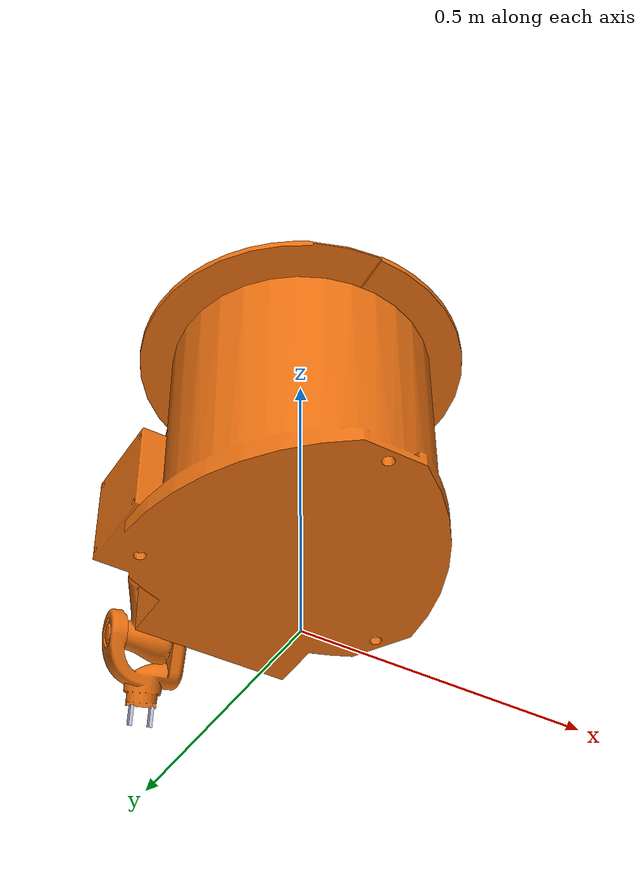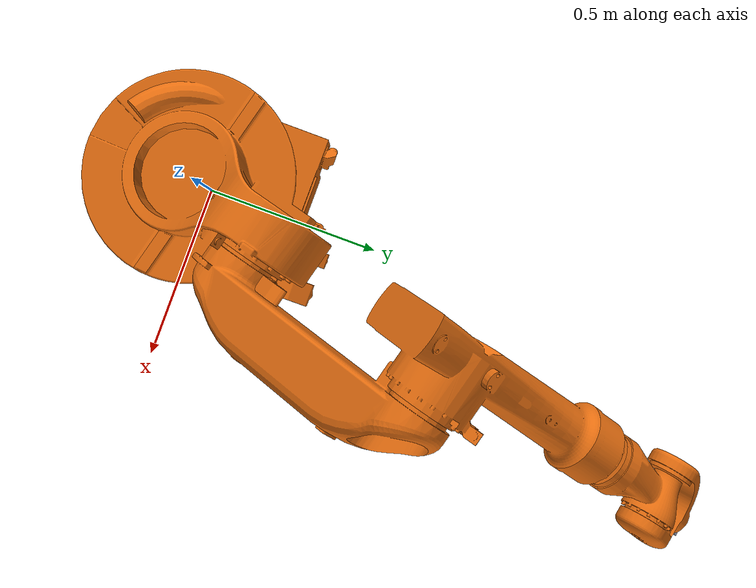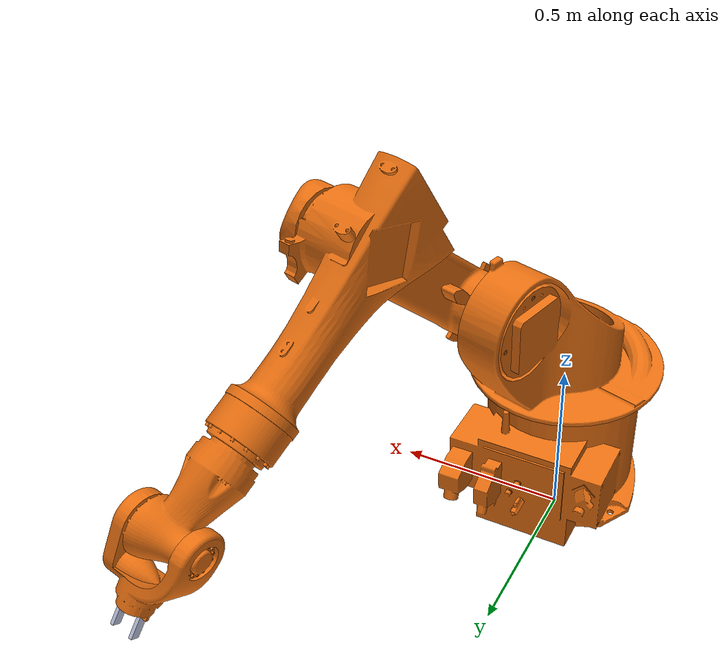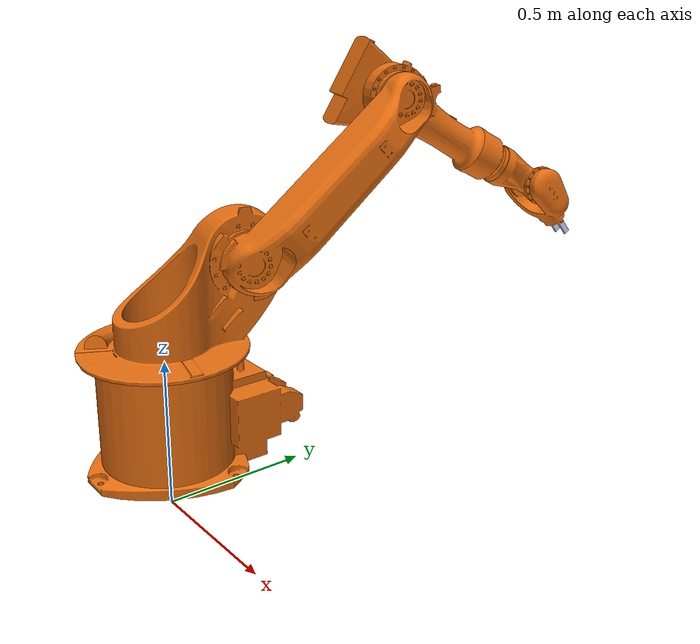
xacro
<?xml version="1.0"?>
<!-- Name your robot here -->
<robot name ="kuka_prism" xmlns:xacro="http://wiki.ros.org/xacro">

<!-- Include your urdf files here -->
	<!-- Include Robot's urdf filepath -->
	<xacro:include filename="$(find kuka_prism)/urdf/kuka_prism.urdf"/>

	<xacro:property name="camera_link" value="0.001" />

	<!-- Camera -->
	<link name="camera_link">
		<collision>
		<origin xyz="0 0 0" rpy="0 0 0"/>
		<geometry>
		<box size="${camera_link} ${camera_link} ${camera_link}"/>
		</geometry>
		</collision>

		<visual>
		<origin xyz="0 0 0" rpy="0 0 0"/>
		<geometry>
		<box size="${camera_link} ${camera_link} ${camera_link}"/>
		</geometry>
		<material name="red"/>
		</visual>

		<inertial>
		<mass value="1e-5" />
		<origin xyz="0 0 0" rpy="0 0 0"/>
		<inertia ixx="1e-6" ixy="0" ixz="0" iyy="1e-6" iyz="0" izz="1e-6" />
		</inertial>
	</link>

<!-- Add your gazebo sensors here -->
	<!-- camera -->
	<gazebo reference="camera_link">
		<sensor type="camera" name="camera1">
			<update_rate>30.0</update_rate>
				<camera name="head">
					<horizontal_fov>1.3962634</horizontal_fov>
					<image>
					<width>800</width>
					<height>800</height>
					<format>R8G8B8</format>
					</image>
					<clip>
					<near>0.02</near>
					<far>300</far>
					</clip>
					<noise>
					<type>gaussian</type>
					<!-- Noise is sampled independently per pixel on each frame.
						That pixel's noise value is added to each of its color
						channels, which at that point lie in the range [0,1]. -->
					<mean>0.0</mean>
					<stddev>0.007</stddev>
					</noise>
				</camera>
				<plugin name="camera_controller" filename="libgazebo_ros_camera.so">
					<alwaysOn>true</alwaysOn>
					<updateRate>0.0</updateRate>
					<cameraName>kuka/camera1</cameraName>
					<imageTopicName>image_raw</imageTopicName>
					<cameraInfoTopicName>camera_info</cameraInfoTopicName>
					<frameName>camera_link</frameName>
					<hackBaseline>0.07</hackBaseline>
					<distortionK1>0.0</distortionK1>
					<distortionK2>0.0</distortionK2>
					<distortionK3>0.0</distortionK3>
					<distortionT1>0.0</distortionT1>
					<distortionT2>0.0</distortionT2>
				</plugin>
			</sensor>
	</gazebo>

<!-- Create a joint between your robot and sensor 1.5708-->
	 <joint
	    name="base-cam joint"
	    type="fixed">
	    <origin
	      xyz="-0.14 0.09 0.04"
	      rpy="0 0 2.7489" />
	    <parent
	      link="P2_Wrist_Link" />
	    <child
	      link="camera_link" />
	 </joint>

	 <gazebo>
		<plugin name="gazebo_grasp_fix" filename="libgazebo_grasp_fix.so">
			 <arm>
				<arm_name>arm_group</arm_name>
				<palm_link> P2_Wrist_Link  </palm_link>
				<gripper_link> Grip1_Link </gripper_link>
				<gripper_link> Grip2_Link </gripper_link>
			 </arm>
			<forces_angle_tolerance>100</forces_angle_tolerance>
			<update_rate>4</update_rate>
			<grip_count_threshold>4</grip_count_threshold>
			<max_grip_count>8</max_grip_count>
			<release_tolerance>0.005</release_tolerance>
			<disable_collisions_on_attach>false</disable_collisions_on_attach>
			<contact_topic>__default_topic__</contact_topic>
		 </plugin>
	 </gazebo>

</robot>

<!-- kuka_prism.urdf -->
<robot name="kuka_prism">

  <link name="world"/>
  <joint name="base_joint" type="fixed">
    <parent link="world"/>
    <child link="base_link"/>
    <origin rpy="0 0 0" xyz="0.0 0.0 0.17"/>
  </joint>

  <link  name="base_link">
    <inertial>
      <origin
        xyz="0.00203770125996271 0.0516787420465166 0.154231674692837"
        rpy="0 0 0" />
      <mass
        value="59.5344572235136" />
      <inertia
        ixx="1.99175054954146"
        ixy="-0.0345376637497177"
        ixz="-0.000618142924361162"
        iyy="1.58719305664109"
        iyz="0.0476710164615629"
        izz="2.15114302906829" />
    </inertial>
    <visual>
      <origin
        xyz="0 0 0"
        rpy="0 0 0" />
      <geometry>
        <mesh
          filename="package://kuka_prism/meshes/base_link.STL" />
      </geometry>
      <material
        name="">
        <color
          rgba="0.917647058823529 0.43921568627451 0.0666666666666667 1" />
      </material>
    </visual>
    <collision>
      <origin
        xyz="0 0 0"
        rpy="0 0 0" />
      <geometry>
        <mesh
          filename="package://kuka_prism/meshes/base_link.STL" />
      </geometry>
    </collision>
  </link>
  <gazebo reference="base_link">
    <material>Gazebo/Black</material>
    <turnGravityOff>false</turnGravityOff>
  </gazebo>

  <link  name="Base_Rotary_Link">
    <inertial>
      <origin
        xyz="0.0208827429069736 0.089343928569874 0.0896769735882005"
        rpy="0 0 0" />
      <mass
        value="24.6935705009375" />
      <inertia
        ixx="1.06759496553512"
        ixy="-0.0886910252753023"
        ixz="-0.087627703242765"
        iyy="0.756138605709795"
        iyz="-0.354551325198558"
        izz="0.636809741979015" />
    </inertial>
    <visual>
      <origin
        xyz="0 0 0"
        rpy="0 0 0" />
      <geometry>
        <mesh
          filename="package://kuka_prism/meshes/Base_Rotary_Link.STL" />
      </geometry>
      <material
        name="">
        <color
          rgba="0.917647058823529 0.43921568627451 0.0666666666666667 1" />
      </material>
    </visual>
    <collision>
      <origin
        xyz="0 0 0"
        rpy="0 0 0" />
      <geometry>
        <mesh
          filename="package://kuka_prism/meshes/Base_Rotary_Link.STL" />
      </geometry>
    </collision>
  </link>
  <gazebo reference="Base_Rotary_Link">
    <material>Gazebo/Orange</material>
    <turnGravityOff>false</turnGravityOff>
  </gazebo>
  <joint  name="Base_Rotary_Joint"  type="revolute">
    <origin
      xyz="0.00295140614493894 0.0114427763503281 0.373"
      rpy="0 0 0" />
    <parent
      link="base_link" />
    <child
      link="Base_Rotary_Link" />
    <axis
      xyz="0 0 1" />
    <limit
      lower="-3.14"
      upper="3.14"
      effort="500"
      velocity="50" />
    <dynamics damping="100" friction="5"/>
  </joint>
  <transmission name="base_rotary_rev_trans">
    <type>transmission_interface/SimpleTransmission</type>
    <joint name="Base_Rotary_Joint">
    <hardwareInterface>hardware_interface/PositionJointInterface</hardwareInterface>
    </joint>
    <actuator name="base_rotary_rev_motor">
    <hardwareInterface>hardware_interface/PositionJointInterface</hardwareInterface>
    <mechanicalReduction>1</mechanicalReduction>
    </actuator>
  </transmission>

  <link  name="Rotary_Lower_Link">
    <inertial>
      <origin
        xyz="-0.218067850531585 0.228000820007621 0.0967589693013073"
        rpy="0 0 0" />
      <mass
        value="16.467727337451" />
      <inertia
        ixx="0.54623145293032"
        ixy="0.420433502144022"
        ixz="0.0238052595102046"
        iyy="0.50067670176559"
        iyz="-0.0249297912984627"
        izz="0.904652444820654" />
    </inertial>
    <visual>
      <origin
        xyz="0 0 0"
        rpy="0 0 0" />
      <geometry>
        <mesh
          filename="package://kuka_prism/meshes/Rotary_Lower_Link.STL" />
      </geometry>
      <material
        name="">
        <color
          rgba="0.917647058823529 0.43921568627451 0.0666666666666667 1" />
      </material>
    </visual>
    <collision>
      <origin
        xyz="0 0 0"
        rpy="0 0 0" />
      <geometry>
        <mesh
          filename="package://kuka_prism/meshes/Rotary_Lower_Link.STL" />
      </geometry>
    </collision>
  </link>
  <gazebo reference="Rotary_Lower_Link">
    <material>Gazebo/Orange</material>
    <turnGravityOff>false</turnGravityOff>
  </gazebo>
  <joint  name="Rotary_Lower_Joint"  type="revolute">
    <origin
      xyz="0.120083091140588 0.225332459849951 0.282"
      rpy="0.252425765300273 1.57079631189374 0" />
    <parent
      link="Base_Rotary_Link" />
    <child
      link="Rotary_Lower_Link" />
    <axis
      xyz="-0.0263066820881646 0 0.999653919352849" />
    <limit
      lower="-0.40"
      upper="1.20"
      effort="500"
      velocity="50" />
      <dynamics damping="100" friction="5.0"/>
  </joint>
  <transmission name="rotary_lower_rev_trans">
    <type>transmission_interface/SimpleTransmission</type>
    <joint name="Rotary_Lower_Joint">
    <hardwareInterface>hardware_interface/PositionJointInterface</hardwareInterface>
    </joint>
    <actuator name="rotary_lower_rev_motor">
    <hardwareInterface>hardware_interface/PositionJointInterface</hardwareInterface>
    <mechanicalReduction>1</mechanicalReduction>
    </actuator>
  </transmission>

  <link  name="Lower_Upper_Link">
    <inertial>
      <origin
        xyz="0.0664354130667393 0.0876861565899366 -0.110272650869997"
        rpy="0 0 0" />
      <mass
        value="9.58028877304867" />
      <inertia
        ixx="0.139395246423734"
        ixy="-0.0544935362969246"
        ixz="0.00300390239346567"
        iyy="0.0756162769192294"
        iyz="0.00199264759598737"
        izz="0.184603625053789" />
    </inertial>
    <visual>
      <origin
        xyz="0 0 0"
        rpy="0 0 0" />
      <geometry>
        <mesh
          filename="package://kuka_prism/meshes/Lower_Upper_Link.STL" />
      </geometry>
      <material
        name="">
        <color
          rgba="0.917647058823529 0.43921568627451 0.0666666666666667 1" />
      </material>
    </visual>
    <collision>
      <origin
        xyz="0 0 0"
        rpy="0 0 0" />
      <geometry>
        <mesh
          filename="package://kuka_prism/meshes/Lower_Upper_Link.STL" />
      </geometry>
    </collision>
  </link>
  <gazebo reference="Lower_Upper_Link">
    <material>Gazebo/Orange</material>
    <turnGravityOff>false</turnGravityOff>
  </gazebo>
  <joint  name="Lower_Upper_Joint"  type="revolute">
    <origin
      xyz="-0.469936955960101 0.493391330737375 0.0410000000000002"
      rpy="0 0 0" />
    <parent
      link="Rotary_Lower_Link" />
    <child
      link="Lower_Upper_Link" />
    <axis
      xyz="0 0 1" />
    <limit
      lower="-1.0"
      upper="1.80"
      effort="500"
      velocity="50" />
    <dynamics damping="100" friction="5.0"/>
  </joint>
  <transmission name="lower_upper_rev_trans">
    <type>transmission_interface/SimpleTransmission</type>
    <joint name="Lower_Upper_Joint">
    <hardwareInterface>hardware_interface/PositionJointInterface</hardwareInterface>
    </joint>
    <actuator name="lower_upper_rev_motor">
    <hardwareInterface>hardware_interface/PositionJointInterface</hardwareInterface>
    <mechanicalReduction>1</mechanicalReduction>
    </actuator>
  </transmission>

  <link  name="Upper_P2_Link">
    <inertial>
      <origin
        xyz="-0.00141641570086826 -0.000525781321933483 0.0900615597783834"
        rpy="0 0 0" />
      <mass
        value="2.45285371756511" />
      <inertia
        ixx="0.54623145293032"
        ixy="0.420433502144022"
        ixz="0.0238052595102046"
        iyy="0.50067670176559"
        iyz="-0.0249297912984627"
        izz="0.904652444820654" />
    </inertial>
    <visual>
      <origin
        xyz="0 0 0"
        rpy="0 0 0" />
      <geometry>
        <mesh
          filename="package://kuka_prism/meshes/Upper_P2_Link.STL" />
      </geometry>
      <material
        name="">
        <color
          rgba="0.917647058823529 0.43921568627451 0.0666666666666667 1" />
      </material>
    </visual>
    <collision>
      <origin
        xyz="0 0 0"
        rpy="0 0 0" />
      <geometry>
        <mesh
          filename="package://kuka_prism/meshes/Upper_P2_Link.STL" />
      </geometry>
    </collision>
  </link>
  <gazebo reference="Upper_P2_Link">
    <material>Gazebo/Orange</material>
    <turnGravityOff>false</turnGravityOff>
  </gazebo>
  <joint  name="Upper_P2_Joint"  type="revolute">
    <origin
      xyz="0.25407 0.40374 -0.119"
      rpy="-1.5708 1.088 -0.5145" />
    <parent
      link="Lower_Upper_Link" />
    <child
      link="Upper_P2_Link" />
    <axis
      xyz="0 0 -1" />
    <limit
      lower="-3.14"
      upper="3.14"
      effort="100"
      velocity="3" />
  </joint>
  <transmission name="upper_p2_rev_trans">
    <type>transmission_interface/SimpleTransmission</type>
    <joint name="Upper_P2_Joint">
    <hardwareInterface>hardware_interface/PositionJointInterface</hardwareInterface>
    </joint>
    <actuator name="upper_p2_cont_motor">
    <hardwareInterface>hardware_interface/PositionJointInterface</hardwareInterface>
    <mechanicalReduction>1</mechanicalReduction>
    </actuator>
  </transmission>

  <link  name="P2_Wrist_Link">
    <inertial>
      <origin
        xyz="-0.0403065091308225 0.0251850660705888 0.039810789967267"
        rpy="0 0 0" />
      <mass
        value="1.92819444444921" />
      <inertia
        ixx="0.00977664808983564"
        ixy="0.00211073374849672"
        ixz="-9.26860812505038E-05"
        iyy="0.0118156258224182"
        iyz="8.44072413727145E-05"
        izz="0.00735281625391729" />
      </inertial>
      <visual>
        <origin
          xyz="0 0 0"
          rpy="0 0 0" />
        <geometry>
          <mesh
            filename="package://kuka_prism/meshes/P2_Wrist_Link.STL" />
        </geometry>
        <material
          name="">
          <color
            rgba="0.917647058823529 0.43921568627451 0.0666666666666667 1" />
        </material>
      </visual>
      <collision>
        <origin
          xyz="0 0 0"
          rpy="0 0 0" />
        <geometry>
          <mesh
            filename="package://kuka_prism/meshes/P2_Wrist_Link.STL" />
        </geometry>
      </collision>
  </link>
  <gazebo reference="P2_Wrist_Link">
    <material>Gazebo/Orange</material>
    <turnGravityOff>false</turnGravityOff>
  </gazebo>
  <joint  name="P2_Wrist_Joint"  type="revolute">
    <origin
      xyz="-0.053493 -0.019685 0.2"
      rpy="1.5708 0.53965 1.9234" />
    <parent
      link="Upper_P2_Link" />
    <child
      link="P2_Wrist_Link" />
    <axis
      xyz="0 0 -1" />
    <limit
      lower="-1.54"
      upper="2.24"
      effort="100"
      velocity="3" />
    <dynamics damping="100" friction="5.0"/>
  </joint>
  <transmission name="p2_wrist_rev_trans">
    <type>transmission_interface/SimpleTransmission</type>
    <joint name="P2_Wrist_Joint">
    <hardwareInterface>hardware_interface/PositionJointInterface</hardwareInterface>
    </joint>
    <actuator name="p2_wrist_rev_motor">
    <hardwareInterface>hardware_interface/PositionJointInterface</hardwareInterface>
    <mechanicalReduction>1</mechanicalReduction>
    </actuator>
  </transmission>

  <link  name="Grip1_Link">
    <inertial>
      <origin
        xyz="0.0177612035288109 0.0111853693539352 2.77555756156289E-17"
        rpy="0 0 0" />
        <mass
        value="0.11653" />
        <inertia
        ixx="3.9246E-05"
        ixy="-4.7946E-20"
        ixz="1.0258E-05"
        iyy="7.1189E-05"
        iyz="-3.946E-20"
        izz="8.4875E-05" />
    </inertial>
    <visual>
      <origin
        xyz="0 0 0"
        rpy="0 0 0" />
      <geometry>
        <mesh
          filename="package://kuka_prism/meshes/Grip1_Link.STL" />
      </geometry>
      <material
        name="">
        <color
          rgba="0.792156862745098 0.819607843137255 0.933333333333333 1" />
      </material>
    </visual>
    <collision>
      <origin
        xyz="0 0 0"
        rpy="0 0 0" />
      <geometry>
        <mesh
          filename="package://kuka_prism/meshes/Grip1_Link.STL" />
      </geometry>
    </collision>
  </link>
  <gazebo reference="Grip1_Link">
    <material>Gazebo/Green</material>
    <turnGravityOff>false</turnGravityOff>
  </gazebo>
  <joint  name="Grip1_Joint"  type="prismatic">
    <origin
      xyz="-0.14302 0.090035 0.06608"
      rpy="3.1416 0 -3.1416" />
    <parent
      link="P2_Wrist_Link" />
    <child
      link="Grip1_Link" />
    <axis
      xyz="0 0 -1" />
    <limit
      lower="-0.225"
      upper="0.230"
      effort="200"
      velocity="3" />
  </joint>
  <transmission name="grip1_pris_trans">
    <type>transmission_interface/SimpleTransmission</type>
    <joint name="Grip1_Joint">
    <hardwareInterface>hardware_interface/PositionJointInterface</hardwareInterface>
    </joint>
    <actuator name="grip1_pris_motor">
    <hardwareInterface>hardware_interface/PositionJointInterface</hardwareInterface>
    <mechanicalReduction>1</mechanicalReduction>
    </actuator>
  </transmission>

  <link  name="Grip2_Link">
    <inertial>
      <origin
        xyz="0.0177612035287864 0.011185369353921 -1.11022302462516E-16"
        rpy="0 0 0" />
      <mass
        value="0.11653" />
      <inertia
        ixx="3.9246E-05"
        ixy="-4.7946E-20"
        ixz="1.0258E-05"
        iyy="7.1189E-05"
        iyz="-3.946E-20"
        izz="8.4875E-05" />
    </inertial>
    <visual>
      <origin
        xyz="0 0 0"
        rpy="0 0 0" />
      <geometry>
        <mesh
          filename="package://kuka_prism/meshes/Grip2_Link.STL" />
      </geometry>
      <material
        name="">
        <color
          rgba="0.792156862745098 0.819607843137255 0.933333333333333 1" />
      </material>
    </visual>
    <collision>
      <origin
        xyz="0 0 0"
        rpy="0 0 0" />
      <geometry>
        <mesh
          filename="package://kuka_prism/meshes/Grip2_Link.STL" />
      </geometry>
    </collision>
  </link>
  <gazebo reference="Grip2_Link">
    <material>Gazebo/Green</material>
    <turnGravityOff>false</turnGravityOff>
  </gazebo>
  <joint  name="Grip2_Joint"  type="prismatic">
    <origin
      xyz="-0.14302 0.090035 0.015861"
      rpy="-3.1416 0 -3.1416" />
    <parent
      link="P2_Wrist_Link" />
    <child
      link="Grip2_Link" />
    <axis
      xyz="0 0 -1" />
    <limit
      lower="-0.190"
      upper="0.235"
      effort="200"
      velocity="3" />
  </joint>
  <transmission name="grip2_pris_trans">
    <type>transmission_interface/SimpleTransmission</type>
    <joint name="Grip2_Joint">
    <hardwareInterface>hardware_interface/PositionJointInterface</hardwareInterface>
    </joint>
    <actuator name="grip2_pris_motor">
    <hardwareInterface>hardware_interface/PositionJointInterface</hardwareInterface>
    <mechanicalReduction>1</mechanicalReduction>
    </actuator>
  </transmission>

  <gazebo>
    <plugin name="control" filename="libgazebo_ros_control.so">
    <robotNamespace>/</robotNamespace>
    </plugin>
  </gazebo>

  <gazebo reference="Base_Rotary_Link">
    <selfCollide>true</selfCollide>
  </gazebo>

  <gazebo reference="Rotary_Lower_Link">
    <selfCollide>true</selfCollide>
  </gazebo>

  <gazebo reference="Lower_Upper_Link">
    <selfCollide>true</selfCollide>
  </gazebo>

  <gazebo reference="Upper_P2_Link">
    <selfCollide>true</selfCollide>
  </gazebo>

  <gazebo reference="P2_Wrist_Link">
    <selfCollide>true</selfCollide>
  </gazebo>

  <gazebo reference="Grip1_Link">
    <selfCollide>true</selfCollide>
  </gazebo>

  <gazebo reference="Grip2_Link">
    <selfCollide>true</selfCollide>
  </gazebo>

</robot>
